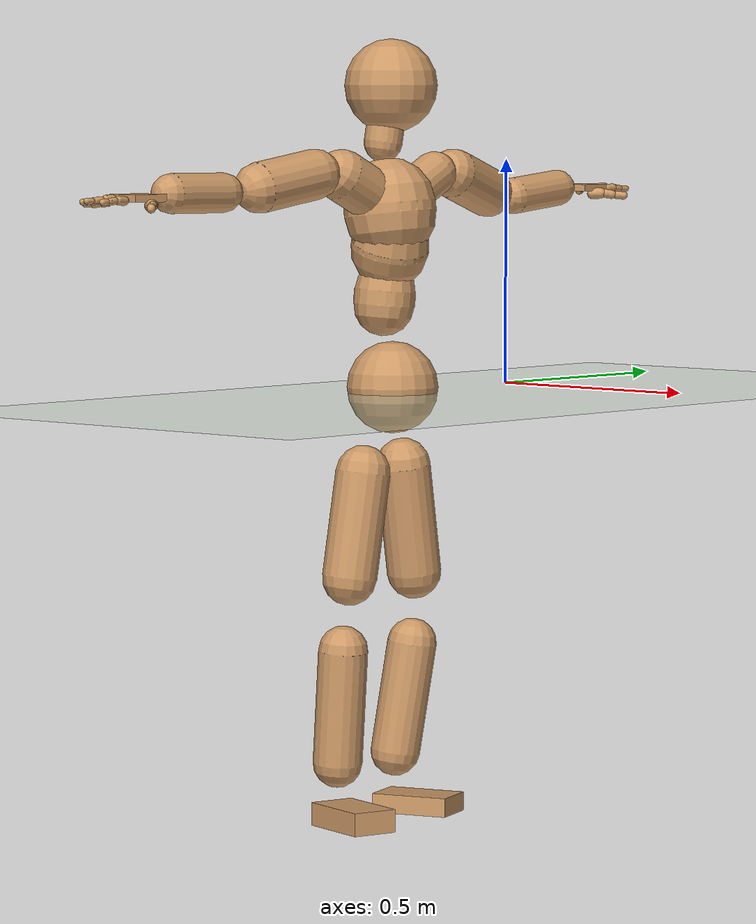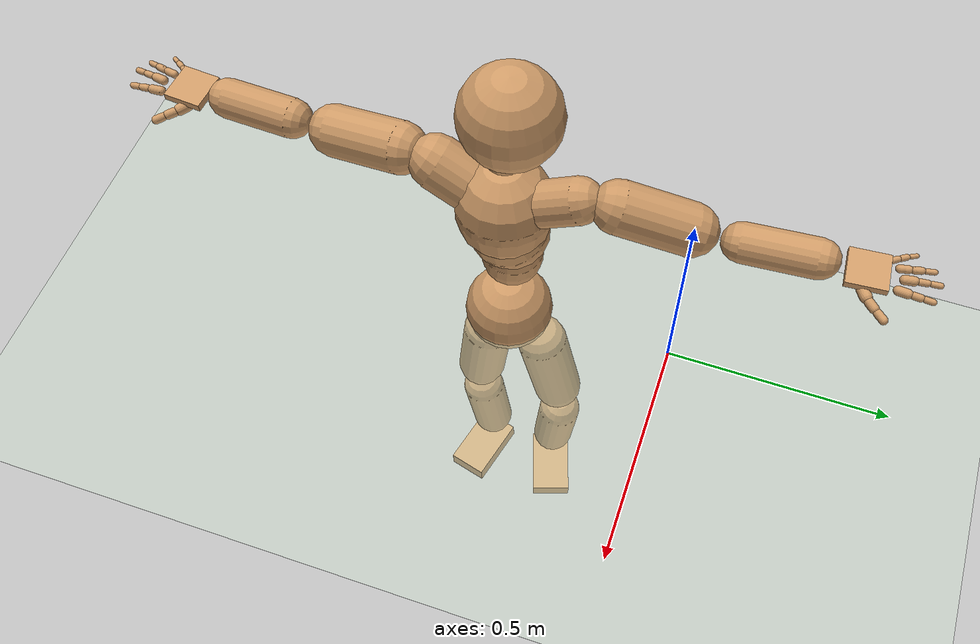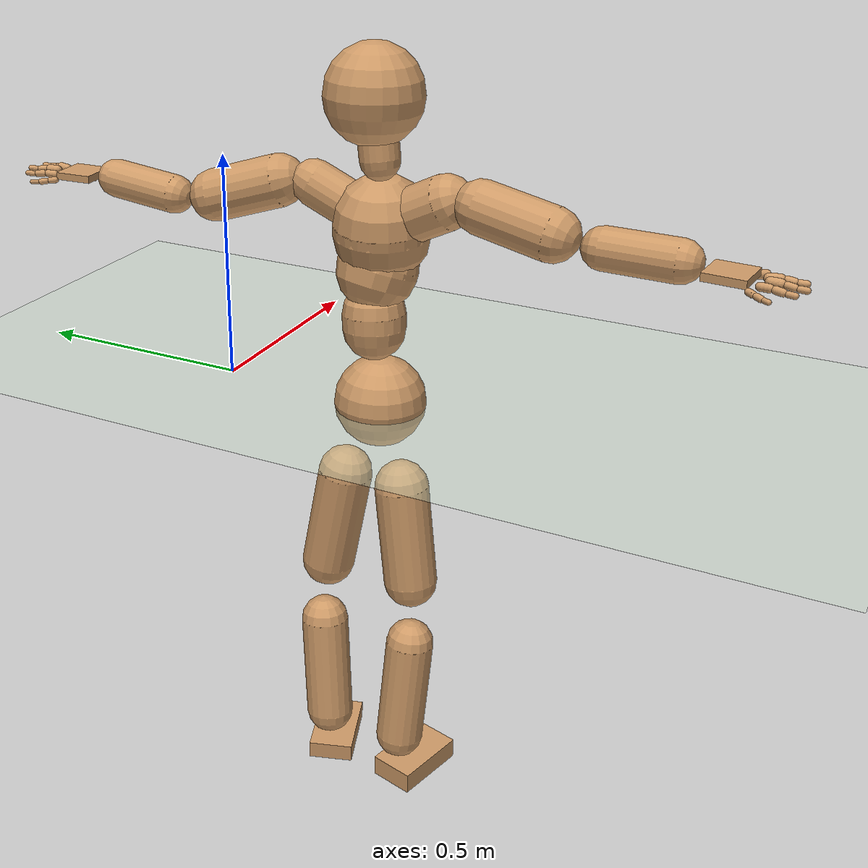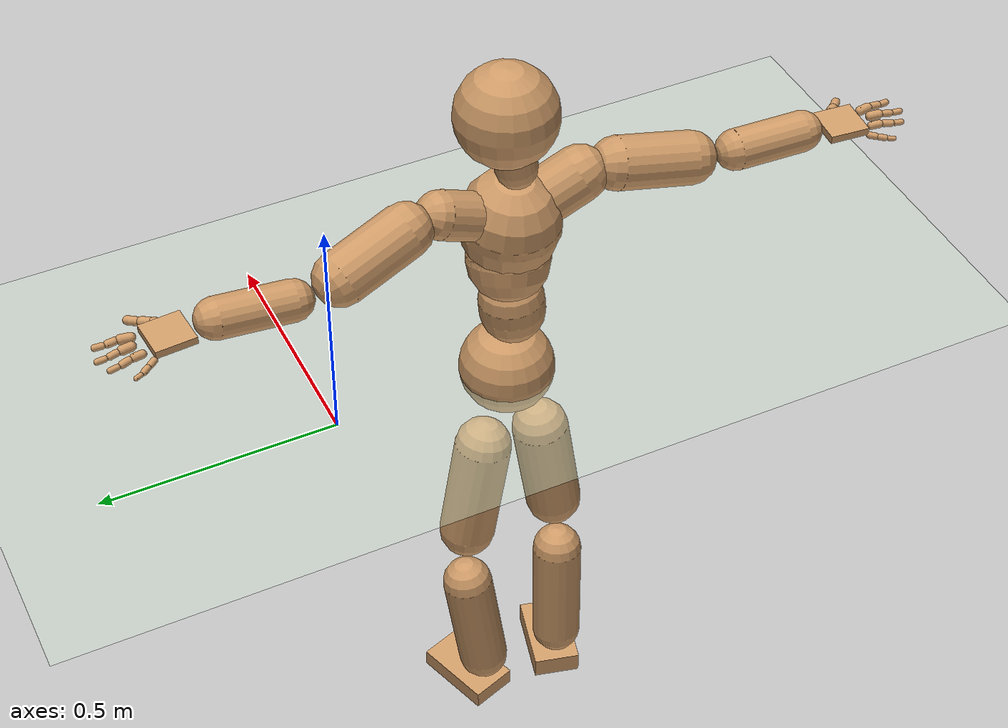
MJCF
<mujoco model="humanoid">
  <compiler coordinate="local" angle="radian"/>
  <default>
    <joint damping="0.0" armature="0.01" stiffness="0.0" limited="true"/>
    <geom conaffinity="1" condim="3" contype="7" margin="0.001" rgba="0.8 0.6 .4 1"/>
  </default>
  <asset>
    <texture type="skybox" builtin="gradient" rgb1=".4 .5 .6" rgb2="0 0 0" width="100" height="100"/>
    <texture builtin="flat" height="1278" mark="cross" markrgb="1 1 1" name="texgeom" random="0.01" rgb1="0.8 0.6 0.4" rgb2="0.8 0.6 0.4" type="cube" width="127"/>
    <texture builtin="checker" height="100" name="texplane" rgb1="0 0 0" rgb2="0.8 0.8 0.8" type="2d" width="100"/>
    <material name="MatPlane" reflectance="0.5" shininess="1" specular="1" texrepeat="60 60" texture="texplane"/>
    <material name="geom" texture="texgeom" texuniform="true"/>
  </asset>
  <worldbody>
    <light cutoff="100" diffuse="1 1 1" dir="-0 0 -1.3" directional="true" exponent="1" pos="0 0 1.3" specular=".1 .1 .1"/>
    <geom conaffinity="1" condim="3" name="floor" pos="0 0 0" rgba="0.8 0.9 0.8 1" size="100 100 .2" type="plane" material="MatPlane"/>
    <body name="Pelvis" pos="0.0008 -0.3782 0.0096">
      <freejoint name="Pelvis"/>
      <geom type="sphere" contype="1" conaffinity="1" density="500" size="0.1004" pos="0.0000 0.0000 0.0000" name="Pelvis"/>
      <body name="L_Hip" pos="-0.0293 0.0551 -0.0975">
        <joint name="L_Hip_x" type="hinge" pos="0 0 0" axis="1 0 0" stiffness="800" damping="80" armature="0.02" range="-180.0000 180.0000"/>
        <joint name="L_Hip_y" type="hinge" pos="0 0 0" axis="0 1 0" stiffness="800" damping="80" armature="0.02" range="-180.0000 180.0000"/>
        <joint name="L_Hip_z" type="hinge" pos="0 0 0" axis="0 0 1" stiffness="800" damping="80" armature="0.02" range="-180.0000 180.0000"/>
        <geom type="capsule" contype="1" conaffinity="1" density="500" fromto="-0.0020 0.0139 -0.0796 -0.0080 0.0557 -0.3185" size="0.0603" name="L_Hip"/>
        <body name="L_Knee" pos="-0.01 0.0697 -0.3982">
          <joint name="L_Knee_x" type="hinge" pos="0 0 0" axis="1 0 0" stiffness="800" damping="80" armature="0.02" range="-180.0000 180.0000"/>
          <joint name="L_Knee_y" type="hinge" pos="0 0 0" axis="0 1 0" stiffness="800" damping="80" armature="0.02" range="-180.0000 180.0000"/>
          <joint name="L_Knee_z" type="hinge" pos="0 0 0" axis="0 0 1" stiffness="800" damping="80" armature="0.02" range="-180.0000 180.0000"/>
          <geom type="capsule" contype="1" conaffinity="1" density="500" fromto="-0.0088 -0.0087 -0.0809 -0.0352 -0.0347 -0.3236" size="0.0547" name="L_Knee"/>
          <body name="L_Ankle" pos="-0.0441 -0.0434 -0.4045">
            <joint name="L_Ankle_x" type="hinge" pos="0 0 0" axis="1 0 0" stiffness="800" damping="80" armature="0.02" range="-180.0000 180.0000"/>
            <joint name="L_Ankle_y" type="hinge" pos="0 0 0" axis="0 1 0" stiffness="800" damping="80" armature="0.02" range="-180.0000 180.0000"/>
            <joint name="L_Ankle_z" type="hinge" pos="0 0 0" axis="0 0 1" stiffness="800" damping="80" armature="0.02" range="-180.0000 180.0000"/>
            <geom type="box" contype="1" conaffinity="1" density="500" pos="0.0650 0.0216 -0.0290" size="0.0882 0.0518 0.0208" quat="0.9871 0.0000 0.0000 0.1600" name="L_Ankle"/>
            <body name="L_Toe" pos="0.1299 0.0433 -0.0581">
              <joint name="L_Toe_x" type="hinge" pos="0 0 0" axis="1 0 0" stiffness="500" damping="50" armature="0.02" range="-180.0000 180.0000"/>
              <joint name="L_Toe_y" type="hinge" pos="0 0 0" axis="0 1 0" stiffness="500" damping="50" armature="0.02" range="-180.0000 180.0000"/>
              <joint name="L_Toe_z" type="hinge" pos="0 0 0" axis="0 0 1" stiffness="500" damping="50" armature="0.02" range="-180.0000 180.0000"/>
              <geom type="box" contype="1" conaffinity="1" density="500" pos="0.0000 0.0000 0.0294" size="0.001 0.0025 0.0011" quat="0.9864 0.0000 0.0000 0.1645" name="L_Toe"/>
            </body>
          </body>
        </body>
      </body>
      <body name="R_Hip" pos="-0.0222 -0.0564 -0.108">
        <joint name="R_Hip_x" type="hinge" pos="0 0 0" axis="1 0 0" stiffness="800" damping="80" armature="0.02" range="-180.0000 180.0000"/>
        <joint name="R_Hip_y" type="hinge" pos="0 0 0" axis="0 1 0" stiffness="800" damping="80" armature="0.02" range="-180.0000 180.0000"/>
        <joint name="R_Hip_z" type="hinge" pos="0 0 0" axis="0 0 1" stiffness="800" damping="80" armature="0.02" range="-180.0000 180.0000"/>
        <geom type="capsule" contype="1" conaffinity="1" density="500" fromto="-0.0035 -0.0106 -0.0763 -0.0141 -0.0426 -0.3051" size="0.0602" name="R_Hip"/>
        <body name="R_Knee" pos="-0.0177 -0.0532 -0.3813">
          <joint name="R_Knee_x" type="hinge" pos="0 0 0" axis="1 0 0" stiffness="800" damping="80" armature="0.02" range="-180.0000 180.0000"/>
          <joint name="R_Knee_y" type="hinge" pos="0 0 0" axis="0 1 0" stiffness="800" damping="80" armature="0.02" range="-180.0000 180.0000"/>
          <joint name="R_Knee_z" type="hinge" pos="0 0 0" axis="0 0 1" stiffness="800" damping="80" armature="0.02" range="-180.0000 180.0000"/>
          <geom type="capsule" contype="1" conaffinity="1" density="500" fromto="-0.0086 0.0031 -0.0836 -0.0346 0.0125 -0.3342" size="0.0545" name="R_Knee"/>
          <body name="R_Ankle" pos="-0.0432 0.0156 -0.4178">
            <joint name="R_Ankle_x" type="hinge" pos="0 0 0" axis="1 0 0" stiffness="800" damping="80" armature="0.02" range="-180.0000 180.0000"/>
            <joint name="R_Ankle_y" type="hinge" pos="0 0 0" axis="0 1 0" stiffness="800" damping="80" armature="0.02" range="-180.0000 180.0000"/>
            <joint name="R_Ankle_z" type="hinge" pos="0 0 0" axis="0 0 1" stiffness="800" damping="80" armature="0.02" range="-180.0000 180.0000"/>
            <geom type="box" contype="1" conaffinity="1" density="500" pos="0.0681 -0.0173 -0.0287" size="0.0882 0.0518 0.0252" quat="0.9923 0.0000 0.0000 -0.1242" name="R_Ankle"/>
            <body name="R_Toe" pos="0.1363 -0.0347 -0.0573">
              <joint name="R_Toe_x" type="hinge" pos="0 0 0" axis="1 0 0" stiffness="500" damping="50" armature="0.02" range="-180.0000 180.0000"/>
              <joint name="R_Toe_y" type="hinge" pos="0 0 0" axis="0 1 0" stiffness="500" damping="50" armature="0.02" range="-180.0000 180.0000"/>
              <joint name="R_Toe_z" type="hinge" pos="0 0 0" axis="0 0 1" stiffness="500" damping="50" armature="0.02" range="-180.0000 180.0000"/>
              <geom type="box" contype="1" conaffinity="1" density="500" pos="0.0000 0.0000 0.0246" size="0.001 0.0025 0.0011" quat="0.9933 0.0000 0.0000 -0.1157" name="R_Toe"/>
            </body>
          </body>
        </body>
      </body>
      <body name="Torso" pos="-0.0311 -0.0018 0.1132">
        <joint name="Torso_x" type="hinge" pos="0 0 0" axis="1 0 0" stiffness="1000" damping="100" armature="0.02" range="-180.0000 180.0000"/>
        <joint name="Torso_y" type="hinge" pos="0 0 0" axis="0 1 0" stiffness="1000" damping="100" armature="0.02" range="-180.0000 180.0000"/>
        <joint name="Torso_z" type="hinge" pos="0 0 0" axis="0 0 1" stiffness="1000" damping="100" armature="0.02" range="-180.0000 180.0000"/>
        <geom type="capsule" contype="1" conaffinity="1" density="500" fromto="0.0054 0.0062 0.0970 0.0036 0.0041 0.0647" size="0.0673" name="Torso"/>
        <body name="Spine" pos="0.009 0.0104 0.1617">
          <joint name="Spine_x" type="hinge" pos="0 0 0" axis="1 0 0" stiffness="1000" damping="100" armature="0.02" range="-180.0000 180.0000"/>
          <joint name="Spine_y" type="hinge" pos="0 0 0" axis="0 1 0" stiffness="1000" damping="100" armature="0.02" range="-180.0000 180.0000"/>
          <joint name="Spine_z" type="hinge" pos="0 0 0" axis="0 0 1" stiffness="1000" damping="100" armature="0.02" range="-180.0000 180.0000"/>
          <geom type="capsule" contype="1" conaffinity="1" density="500" fromto="0.0132 -0.0053 0.0360 0.0088 -0.0035 0.0240" size="0.0852" name="Spine"/>
          <body name="Chest" pos="0.0221 -0.0088 0.06">
            <joint name="Chest_x" type="hinge" pos="0 0 0" axis="1 0 0" stiffness="1000" damping="100" armature="0.02" range="-180.0000 180.0000"/>
            <joint name="Chest_y" type="hinge" pos="0 0 0" axis="0 1 0" stiffness="1000" damping="100" armature="0.02" range="-180.0000 180.0000"/>
            <joint name="Chest_z" type="hinge" pos="0 0 0" axis="0 0 1" stiffness="1000" damping="100" armature="0.02" range="-180.0000 180.0000"/>
            <geom type="capsule" contype="1" conaffinity="1" density="500" fromto="-0.0069 -0.0022 0.0640 -0.0046 -0.0015 0.0427" size="0.1015" name="Chest"/>
            <body name="Neck" pos="-0.0254 -0.0087 0.1659">
              <joint name="Neck_x" type="hinge" pos="0 0 0" axis="1 0 0" stiffness="500" damping="50" armature="0.02" range="-180.0000 180.0000"/>
              <joint name="Neck_y" type="hinge" pos="0 0 0" axis="0 1 0" stiffness="500" damping="50" armature="0.02" range="-180.0000 180.0000"/>
              <joint name="Neck_z" type="hinge" pos="0 0 0" axis="0 0 1" stiffness="500" damping="50" armature="0.02" range="-180.0000 180.0000"/>
              <geom type="capsule" contype="1" conaffinity="1" density="500" fromto="0.0018 0.0044 0.0309 0.0073 0.0178 0.1236" size="0.0419" name="Neck"/>
              <body name="Head" pos="0.0091 0.0222 0.1545">
                <joint name="Head_x" type="hinge" pos="0 0 0" axis="1 0 0" stiffness="500" damping="50" armature="0.02" range="-180.0000 180.0000"/>
                <joint name="Head_y" type="hinge" pos="0 0 0" axis="0 1 0" stiffness="500" damping="50" armature="0.02" range="-180.0000 180.0000"/>
                <joint name="Head_z" type="hinge" pos="0 0 0" axis="0 0 1" stiffness="500" damping="50" armature="0.02" range="-180.0000 180.0000"/>
                <geom type="sphere" contype="1" conaffinity="1" density="500" size="0.1019" pos="0.0000 0.0000 0.0000" name="Head"/>
              </body>
            </body>
            <body name="L_Thorax" pos="-0.0029 0.0416 0.0768">
              <joint name="L_Thorax_x" type="hinge" pos="0 0 0" axis="1 0 0" stiffness="500" damping="50" armature="0.02" range="-180.0000 180.0000"/>
              <joint name="L_Thorax_y" type="hinge" pos="0 0 0" axis="0 1 0" stiffness="500" damping="50" armature="0.02" range="-180.0000 180.0000"/>
              <joint name="L_Thorax_z" type="hinge" pos="0 0 0" axis="0 0 1" stiffness="500" damping="50" armature="0.02" range="-180.0000 180.0000"/>
              <geom type="capsule" contype="1" conaffinity="1" density="500" fromto="-0.0024 0.0271 0.0129 -0.0096 0.1085 0.0515" size="0.0487" name="L_Thorax"/>
              <body name="L_Shoulder" pos="-0.012 0.1356 0.0644">
                <joint name="L_Shoulder_x" type="hinge" pos="0 0 0" axis="1 0 0" stiffness="500" damping="50" armature="0.02" range="-180.0000 180.0000"/>
                <joint name="L_Shoulder_y" type="hinge" pos="0 0 0" axis="0 1 0" stiffness="500" damping="50" armature="0.02" range="-180.0000 180.0000"/>
                <joint name="L_Shoulder_z" type="hinge" pos="0 0 0" axis="0 0 1" stiffness="500" damping="50" armature="0.02" range="-180.0000 180.0000"/>
                <geom type="capsule" contype="1" conaffinity="1" density="500" fromto="-0.0082 0.0479 -0.0148 -0.0330 0.1915 -0.0591" size="0.0552" name="L_Shoulder"/>
                <body name="L_Elbow" pos="-0.0412 0.2393 -0.0739">
                  <joint name="L_Elbow_x" type="hinge" pos="0 0 0" axis="1 0 0" stiffness="500" damping="50" armature="0.02" range="-720.0000 720.0000"/>
                  <joint name="L_Elbow_y" type="hinge" pos="0 0 0" axis="0 1 0" stiffness="500" damping="50" armature="0.02" range="-720.0000 720.0000"/>
                  <joint name="L_Elbow_z" type="hinge" pos="0 0 0" axis="0 0 1" stiffness="500" damping="50" armature="0.02" range="-720.0000 720.0000"/>
                  <geom type="capsule" contype="1" conaffinity="1" density="500" fromto="0.0000 0.0503 0.0052 0.0001 0.2012 0.0207" size="0.0411" name="L_Elbow"/>
                  <body name="L_Wrist" pos="0.0002 0.2515 0.0258">
                    <joint name="L_Wrist_x" type="hinge" pos="0 0 0" axis="1 0 0" stiffness="300" damping="30" armature="0.02" range="-180.0000 180.0000"/>
                    <joint name="L_Wrist_y" type="hinge" pos="0 0 0" axis="0 1 0" stiffness="300" damping="30" armature="0.02" range="-180.0000 180.0000"/>
                    <joint name="L_Wrist_z" type="hinge" pos="0 0 0" axis="0 0 1" stiffness="300" damping="30" armature="0.02" range="-180.0000 180.0000"/>
                    <geom type="box" contype="1" conaffinity="1" density="500" pos="-0.0029 0.0408 -0.0059" size="0.0414 0.0411 0.0078" quat="0.7313 0.0000 0.0000 -0.6820" name="L_Wrist"/>
                    <body name="L_Index1" pos="0.0205 0.0964 -0.0089">
                      <joint name="L_Index1_x" type="hinge" pos="0 0 0" axis="1 0 0" stiffness="100" damping="10" armature="0.02" range="-180.0000 180.0000"/>
                      <joint name="L_Index1_y" type="hinge" pos="0 0 0" axis="0 1 0" stiffness="100" damping="10" armature="0.02" range="-180.0000 180.0000"/>
                      <joint name="L_Index1_z" type="hinge" pos="0 0 0" axis="0 0 1" stiffness="100" damping="10" armature="0.02" range="-180.0000 180.0000"/>
                      <geom type="capsule" contype="1" conaffinity="1" density="500" fromto="0.0007 0.0063 0.0003 0.0027 0.0254 0.0012" size="0.0095" name="L_Index1"/>
                      <body name="L_Index2" pos="0.0034 0.0317 0.0015">
                        <joint name="L_Index2_x" type="hinge" pos="0 0 0" axis="1 0 0" stiffness="100" damping="10" armature="0.02" range="-180.0000 180.0000"/>
                        <joint name="L_Index2_y" type="hinge" pos="0 0 0" axis="0 1 0" stiffness="100" damping="10" armature="0.02" range="-180.0000 180.0000"/>
                        <joint name="L_Index2_z" type="hinge" pos="0 0 0" axis="0 0 1" stiffness="100" damping="10" armature="0.02" range="-180.0000 180.0000"/>
                        <geom type="capsule" contype="1" conaffinity="1" density="500" fromto="-0.0001 0.0045 -0.0005 -0.0003 0.0179 -0.0021" size="0.0077" name="L_Index2"/>
                        <body name="L_Index3" pos="-0.0004 0.0224 -0.0026">
                          <joint name="L_Index3_x" type="hinge" pos="0 0 0" axis="1 0 0" stiffness="100" damping="10" armature="0.02" range="-180.0000 180.0000"/>
                          <joint name="L_Index3_y" type="hinge" pos="0 0 0" axis="0 1 0" stiffness="100" damping="10" armature="0.02" range="-180.0000 180.0000"/>
                          <joint name="L_Index3_z" type="hinge" pos="0 0 0" axis="0 0 1" stiffness="100" damping="10" armature="0.02" range="-180.0000 180.0000"/>
                          <geom type="capsule" contype="1" conaffinity="1" density="500" fromto="0.0003 0.0049 -0.0001 0.0013 0.0195 -0.0005" size="0.0065" name="L_Index3"/>
                        </body>
                      </body>
                    </body>
                    <body name="L_Middle1" pos="-0.0036 0.1038 -0.0062">
                      <joint name="L_Middle1_x" type="hinge" pos="0 0 0" axis="1 0 0" stiffness="100" damping="10" armature="0.02" range="-180.0000 180.0000"/>
                      <joint name="L_Middle1_y" type="hinge" pos="0 0 0" axis="0 1 0" stiffness="100" damping="10" armature="0.02" range="-180.0000 180.0000"/>
                      <joint name="L_Middle1_z" type="hinge" pos="0 0 0" axis="0 0 1" stiffness="100" damping="10" armature="0.02" range="-180.0000 180.0000"/>
                      <geom type="capsule" contype="1" conaffinity="1" density="500" fromto="-0.0009 0.0061 0.0001 -0.0034 0.0243 0.0004" size="0.0095" name="L_Middle1"/>
                      <body name="L_Middle2" pos="-0.0043 0.0303 0.0005">
                        <joint name="L_Middle2_x" type="hinge" pos="0 0 0" axis="1 0 0" stiffness="100" damping="10" armature="0.02" range="-180.0000 180.0000"/>
                        <joint name="L_Middle2_y" type="hinge" pos="0 0 0" axis="0 1 0" stiffness="100" damping="10" armature="0.02" range="-180.0000 180.0000"/>
                        <joint name="L_Middle2_z" type="hinge" pos="0 0 0" axis="0 0 1" stiffness="100" damping="10" armature="0.02" range="-180.0000 180.0000"/>
                        <geom type="capsule" contype="1" conaffinity="1" density="500" fromto="-0.0009 0.0046 -0.0005 -0.0034 0.0185 -0.0019" size="0.007" name="L_Middle2"/>
                        <body name="L_Middle3" pos="-0.0043 0.0232 -0.0023">
                          <joint name="L_Middle3_x" type="hinge" pos="0 0 0" axis="1 0 0" stiffness="100" damping="10" armature="0.02" range="-180.0000 180.0000"/>
                          <joint name="L_Middle3_y" type="hinge" pos="0 0 0" axis="0 1 0" stiffness="100" damping="10" armature="0.02" range="-180.0000 180.0000"/>
                          <joint name="L_Middle3_z" type="hinge" pos="0 0 0" axis="0 0 1" stiffness="100" damping="10" armature="0.02" range="-180.0000 180.0000"/>
                          <geom type="capsule" contype="1" conaffinity="1" density="500" fromto="-0.0005 0.0050 -0.0001 -0.0018 0.0201 -0.0003" size="0.0061" name="L_Middle3"/>
                        </body>
                      </body>
                    </body>
                    <body name="L_Pinky1" pos="-0.0446 0.0794 -0.0148">
                      <joint name="L_Pinky1_x" type="hinge" pos="0 0 0" axis="1 0 0" stiffness="100" damping="10" armature="0.02" range="-180.0000 180.0000"/>
                      <joint name="L_Pinky1_y" type="hinge" pos="0 0 0" axis="0 1 0" stiffness="100" damping="10" armature="0.02" range="-180.0000 180.0000"/>
                      <joint name="L_Pinky1_z" type="hinge" pos="0 0 0" axis="0 0 1" stiffness="100" damping="10" armature="0.02" range="-180.0000 180.0000"/>
                      <geom type="capsule" contype="1" conaffinity="1" density="500" fromto="-0.0023 0.0032 -0.0003 -0.0093 0.0130 -0.0013" size="0.0067" name="L_Pinky1"/>
                      <body name="L_Pinky2" pos="-0.0116 0.0162 -0.0016">
                        <joint name="L_Pinky2_x" type="hinge" pos="0 0 0" axis="1 0 0" stiffness="100" damping="10" armature="0.02" range="-180.0000 180.0000"/>
                        <joint name="L_Pinky2_y" type="hinge" pos="0 0 0" axis="0 1 0" stiffness="100" damping="10" armature="0.02" range="-180.0000 180.0000"/>
                        <joint name="L_Pinky2_z" type="hinge" pos="0 0 0" axis="0 0 1" stiffness="100" damping="10" armature="0.02" range="-180.0000 180.0000"/>
                        <geom type="capsule" contype="1" conaffinity="1" density="500" fromto="-0.0022 0.0032 -0.0004 -0.0086 0.0128 -0.0015" size="0.0064" name="L_Pinky2"/>
                        <body name="L_Pinky3" pos="-0.0108 0.0161 -0.0018">
                          <joint name="L_Pinky3_x" type="hinge" pos="0 0 0" axis="1 0 0" stiffness="100" damping="10" armature="0.02" range="-180.0000 180.0000"/>
                          <joint name="L_Pinky3_y" type="hinge" pos="0 0 0" axis="0 1 0" stiffness="100" damping="10" armature="0.02" range="-180.0000 180.0000"/>
                          <joint name="L_Pinky3_z" type="hinge" pos="0 0 0" axis="0 0 1" stiffness="100" damping="10" armature="0.02" range="-180.0000 180.0000"/>
                          <geom type="capsule" contype="1" conaffinity="1" density="500" fromto="-0.0018 0.0036 0.0000 -0.0070 0.0144 0.0001" size="0.0048" name="L_Pinky3"/>
                        </body>
                      </body>
                    </body>
                    <body name="L_Ring1" pos="-0.0276 0.0922 -0.0091">
                      <joint name="L_Ring1_x" type="hinge" pos="0 0 0" axis="1 0 0" stiffness="100" damping="10" armature="0.02" range="-180.0000 180.0000"/>
                      <joint name="L_Ring1_y" type="hinge" pos="0 0 0" axis="0 1 0" stiffness="100" damping="10" armature="0.02" range="-180.0000 180.0000"/>
                      <joint name="L_Ring1_z" type="hinge" pos="0 0 0" axis="0 0 1" stiffness="100" damping="10" armature="0.02" range="-180.0000 180.0000"/>
                      <geom type="capsule" contype="1" conaffinity="1" density="500" fromto="-0.0010 0.0056 0.0001 -0.0038 0.0225 0.0006" size="0.0081" name="L_Ring1"/>
                      <body name="L_Ring2" pos="-0.0048 0.0281 0.0007">
                        <joint name="L_Ring2_x" type="hinge" pos="0 0 0" axis="1 0 0" stiffness="100" damping="10" armature="0.02" range="-180.0000 180.0000"/>
                        <joint name="L_Ring2_y" type="hinge" pos="0 0 0" axis="0 1 0" stiffness="100" damping="10" armature="0.02" range="-180.0000 180.0000"/>
                        <joint name="L_Ring2_z" type="hinge" pos="0 0 0" axis="0 0 1" stiffness="100" damping="10" armature="0.02" range="-180.0000 180.0000"/>
                        <geom type="capsule" contype="1" conaffinity="1" density="500" fromto="-0.0013 0.0046 -0.0005 -0.0052 0.0184 -0.0018" size="0.0075" name="L_Ring2"/>
                        <body name="L_Ring3" pos="-0.0065 0.0229 -0.0023">
                          <joint name="L_Ring3_x" type="hinge" pos="0 0 0" axis="1 0 0" stiffness="100" damping="10" armature="0.02" range="-180.0000 180.0000"/>
                          <joint name="L_Ring3_y" type="hinge" pos="0 0 0" axis="0 1 0" stiffness="100" damping="10" armature="0.02" range="-180.0000 180.0000"/>
                          <joint name="L_Ring3_z" type="hinge" pos="0 0 0" axis="0 0 1" stiffness="100" damping="10" armature="0.02" range="-180.0000 180.0000"/>
                          <geom type="capsule" contype="1" conaffinity="1" density="500" fromto="-0.0009 0.0050 -0.0001 -0.0036 0.0200 -0.0002" size="0.0058" name="L_Ring3"/>
                        </body>
                      </body>
                    </body>
                    <body name="L_Thumb1" pos="0.0268 0.0365 -0.0198">
                      <joint name="L_Thumb1_x" type="hinge" pos="0 0 0" axis="1 0 0" stiffness="100" damping="10" armature="0.02" range="-180.0000 180.0000"/>
                      <joint name="L_Thumb1_y" type="hinge" pos="0 0 0" axis="0 1 0" stiffness="100" damping="10" armature="0.02" range="-180.0000 180.0000"/>
                      <joint name="L_Thumb1_z" type="hinge" pos="0 0 0" axis="0 0 1" stiffness="100" damping="10" armature="0.02" range="-180.0000 180.0000"/>
                      <geom type="capsule" contype="1" conaffinity="1" density="500" fromto="0.0052 0.0032 0.0004 0.0210 0.0128 0.0015" size="0.0123" name="L_Thumb1"/>
                      <body name="L_Thumb2" pos="0.0262 0.016 0.0019">
                        <joint name="L_Thumb2_x" type="hinge" pos="0 0 0" axis="1 0 0" stiffness="100" damping="10" armature="0.02" range="-180.0000 180.0000"/>
                        <joint name="L_Thumb2_y" type="hinge" pos="0 0 0" axis="0 1 0" stiffness="100" damping="10" armature="0.02" range="-180.0000 180.0000"/>
                        <joint name="L_Thumb2_z" type="hinge" pos="0 0 0" axis="0 0 1" stiffness="100" damping="10" armature="0.02" range="-180.0000 180.0000"/>
                        <geom type="capsule" contype="1" conaffinity="1" density="500" fromto="0.0033 0.0040 -0.0009 0.0130 0.0160 -0.0034" size="0.0098" name="L_Thumb2"/>
                        <body name="L_Thumb3" pos="0.0163 0.02 -0.0043">
                          <joint name="L_Thumb3_x" type="hinge" pos="0 0 0" axis="1 0 0" stiffness="100" damping="10" armature="0.02" range="-180.0000 180.0000"/>
                          <joint name="L_Thumb3_y" type="hinge" pos="0 0 0" axis="0 1 0" stiffness="100" damping="10" armature="0.02" range="-180.0000 180.0000"/>
                          <joint name="L_Thumb3_z" type="hinge" pos="0 0 0" axis="0 0 1" stiffness="100" damping="10" armature="0.02" range="-180.0000 180.0000"/>
                          <geom type="capsule" contype="1" conaffinity="1" density="500" fromto="0.0037 0.0044 -0.0005 0.0146 0.0176 -0.0018" size="0.0088" name="L_Thumb3"/>
                        </body>
                      </body>
                    </body>
                  </body>
                </body>
              </body>
            </body>
            <body name="R_Thorax" pos="-0.006 -0.0441 0.0772">
              <joint name="R_Thorax_x" type="hinge" pos="0 0 0" axis="1 0 0" stiffness="500" damping="50" armature="0.02" range="-180.0000 180.0000"/>
              <joint name="R_Thorax_y" type="hinge" pos="0 0 0" axis="0 1 0" stiffness="500" damping="50" armature="0.02" range="-180.0000 180.0000"/>
              <joint name="R_Thorax_z" type="hinge" pos="0 0 0" axis="0 0 1" stiffness="500" damping="50" armature="0.02" range="-180.0000 180.0000"/>
              <geom type="capsule" contype="1" conaffinity="1" density="500" fromto="-0.0020 -0.0251 0.0126 -0.0081 -0.1006 0.0503" size="0.0571" name="R_Thorax"/>
              <body name="R_Shoulder" pos="-0.0102 -0.1257 0.0629">
                <joint name="R_Shoulder_x" type="hinge" pos="0 0 0" axis="1 0 0" stiffness="500" damping="50" armature="0.02" range="-180.0000 180.0000"/>
                <joint name="R_Shoulder_y" type="hinge" pos="0 0 0" axis="0 1 0" stiffness="500" damping="50" armature="0.02" range="-180.0000 180.0000"/>
                <joint name="R_Shoulder_z" type="hinge" pos="0 0 0" axis="0 0 1" stiffness="500" damping="50" armature="0.02" range="-180.0000 180.0000"/>
                <geom type="capsule" contype="1" conaffinity="1" density="500" fromto="-0.0057 -0.0511 -0.0089 -0.0227 -0.2043 -0.0354" size="0.0545" name="R_Shoulder"/>
                <body name="R_Elbow" pos="-0.0284 -0.2554 -0.0443">
                  <joint name="R_Elbow_x" type="hinge" pos="0 0 0" axis="1 0 0" stiffness="500" damping="50" armature="0.02" range="-720.0000 720.0000"/>
                  <joint name="R_Elbow_y" type="hinge" pos="0 0 0" axis="0 1 0" stiffness="500" damping="50" armature="0.02" range="-720.0000 720.0000"/>
                  <joint name="R_Elbow_z" type="hinge" pos="0 0 0" axis="0 0 1" stiffness="500" damping="50" armature="0.02" range="-720.0000 720.0000"/>
                  <geom type="capsule" contype="1" conaffinity="1" density="500" fromto="-0.0021 -0.0488 0.0002 -0.0085 -0.1954 0.0008" size="0.042" name="R_Elbow"/>
                  <body name="R_Wrist" pos="-0.0106 -0.2442 0.001">
                    <joint name="R_Wrist_x" type="hinge" pos="0 0 0" axis="1 0 0" stiffness="300" damping="30" armature="0.02" range="-180.0000 180.0000"/>
                    <joint name="R_Wrist_y" type="hinge" pos="0 0 0" axis="0 1 0" stiffness="300" damping="30" armature="0.02" range="-180.0000 180.0000"/>
                    <joint name="R_Wrist_z" type="hinge" pos="0 0 0" axis="0 0 1" stiffness="300" damping="30" armature="0.02" range="-180.0000 180.0000"/>
                    <geom type="box" contype="1" conaffinity="1" density="500" pos="-0.0033 -0.0406 -0.0077" size="0.0414 0.0421 0.008" quat="0.7351 0.0000 0.0000 0.6780" name="R_Wrist"/>
                    <body name="R_Index1" pos="0.0197 -0.096 -0.0125">
                      <joint name="R_Index1_x" type="hinge" pos="0 0 0" axis="1 0 0" stiffness="100" damping="10" armature="0.02" range="-180.0000 180.0000"/>
                      <joint name="R_Index1_y" type="hinge" pos="0 0 0" axis="0 1 0" stiffness="100" damping="10" armature="0.02" range="-180.0000 180.0000"/>
                      <joint name="R_Index1_z" type="hinge" pos="0 0 0" axis="0 0 1" stiffness="100" damping="10" armature="0.02" range="-180.0000 180.0000"/>
                      <geom type="capsule" contype="1" conaffinity="1" density="500" fromto="0.0007 -0.0063 0.0003 0.0027 -0.0254 0.0012" size="0.0095" name="R_Index1"/>
                      <body name="R_Index2" pos="0.0034 -0.0317 0.0015">
                        <joint name="R_Index2_x" type="hinge" pos="0 0 0" axis="1 0 0" stiffness="100" damping="10" armature="0.02" range="-180.0000 180.0000"/>
                        <joint name="R_Index2_y" type="hinge" pos="0 0 0" axis="0 1 0" stiffness="100" damping="10" armature="0.02" range="-180.0000 180.0000"/>
                        <joint name="R_Index2_z" type="hinge" pos="0 0 0" axis="0 0 1" stiffness="100" damping="10" armature="0.02" range="-180.0000 180.0000"/>
                        <geom type="capsule" contype="1" conaffinity="1" density="500" fromto="-0.0001 -0.0045 -0.0005 -0.0003 -0.0179 -0.0021" size="0.0077" name="R_Index2"/>
                        <body name="R_Index3" pos="-0.0004 -0.0224 -0.0026">
                          <joint name="R_Index3_x" type="hinge" pos="0 0 0" axis="1 0 0" stiffness="100" damping="10" armature="0.02" range="-180.0000 180.0000"/>
                          <joint name="R_Index3_y" type="hinge" pos="0 0 0" axis="0 1 0" stiffness="100" damping="10" armature="0.02" range="-180.0000 180.0000"/>
                          <joint name="R_Index3_z" type="hinge" pos="0 0 0" axis="0 0 1" stiffness="100" damping="10" armature="0.02" range="-180.0000 180.0000"/>
                          <geom type="capsule" contype="1" conaffinity="1" density="500" fromto="0.0003 -0.0041 -0.0001 0.0013 -0.0163 -0.0005" size="0.0068" name="R_Index3"/>
                        </body>
                      </body>
                    </body>
                    <body name="R_Middle1" pos="-0.0045 -0.1034 -0.0098">
                      <joint name="R_Middle1_x" type="hinge" pos="0 0 0" axis="1 0 0" stiffness="100" damping="10" armature="0.02" range="-180.0000 180.0000"/>
                      <joint name="R_Middle1_y" type="hinge" pos="0 0 0" axis="0 1 0" stiffness="100" damping="10" armature="0.02" range="-180.0000 180.0000"/>
                      <joint name="R_Middle1_z" type="hinge" pos="0 0 0" axis="0 0 1" stiffness="100" damping="10" armature="0.02" range="-180.0000 180.0000"/>
                      <geom type="capsule" contype="1" conaffinity="1" density="500" fromto="-0.0009 -0.0061 0.0001 -0.0034 -0.0243 0.0004" size="0.0095" name="R_Middle1"/>
                      <body name="R_Middle2" pos="-0.0043 -0.0303 0.0005">
                        <joint name="R_Middle2_x" type="hinge" pos="0 0 0" axis="1 0 0" stiffness="100" damping="10" armature="0.02" range="-180.0000 180.0000"/>
                        <joint name="R_Middle2_y" type="hinge" pos="0 0 0" axis="0 1 0" stiffness="100" damping="10" armature="0.02" range="-180.0000 180.0000"/>
                        <joint name="R_Middle2_z" type="hinge" pos="0 0 0" axis="0 0 1" stiffness="100" damping="10" armature="0.02" range="-180.0000 180.0000"/>
                        <geom type="capsule" contype="1" conaffinity="1" density="500" fromto="-0.0009 -0.0046 -0.0005 -0.0034 -0.0185 -0.0019" size="0.007" name="R_Middle2"/>
                        <body name="R_Middle3" pos="-0.0043 -0.0232 -0.0023">
                          <joint name="R_Middle3_x" type="hinge" pos="0 0 0" axis="1 0 0" stiffness="100" damping="10" armature="0.02" range="-180.0000 180.0000"/>
                          <joint name="R_Middle3_y" type="hinge" pos="0 0 0" axis="0 1 0" stiffness="100" damping="10" armature="0.02" range="-180.0000 180.0000"/>
                          <joint name="R_Middle3_z" type="hinge" pos="0 0 0" axis="0 0 1" stiffness="100" damping="10" armature="0.02" range="-180.0000 180.0000"/>
                          <geom type="capsule" contype="1" conaffinity="1" density="500" fromto="-0.0005 -0.0042 -0.0001 -0.0018 -0.0169 -0.0003" size="0.0064" name="R_Middle3"/>
                        </body>
                      </body>
                    </body>
                    <body name="R_Pinky1" pos="-0.0455 -0.079 -0.0184">
                      <joint name="R_Pinky1_x" type="hinge" pos="0 0 0" axis="1 0 0" stiffness="100" damping="10" armature="0.02" range="-180.0000 180.0000"/>
                      <joint name="R_Pinky1_y" type="hinge" pos="0 0 0" axis="0 1 0" stiffness="100" damping="10" armature="0.02" range="-180.0000 180.0000"/>
                      <joint name="R_Pinky1_z" type="hinge" pos="0 0 0" axis="0 0 1" stiffness="100" damping="10" armature="0.02" range="-180.0000 180.0000"/>
                      <geom type="capsule" contype="1" conaffinity="1" density="500" fromto="-0.0023 -0.0032 -0.0003 -0.0093 -0.0130 -0.0013" size="0.0067" name="R_Pinky1"/>
                      <body name="R_Pinky2" pos="-0.0116 -0.0162 -0.0016">
                        <joint name="R_Pinky2_x" type="hinge" pos="0 0 0" axis="1 0 0" stiffness="100" damping="10" armature="0.02" range="-180.0000 180.0000"/>
                        <joint name="R_Pinky2_y" type="hinge" pos="0 0 0" axis="0 1 0" stiffness="100" damping="10" armature="0.02" range="-180.0000 180.0000"/>
                        <joint name="R_Pinky2_z" type="hinge" pos="0 0 0" axis="0 0 1" stiffness="100" damping="10" armature="0.02" range="-180.0000 180.0000"/>
                        <geom type="capsule" contype="1" conaffinity="1" density="500" fromto="-0.0022 -0.0032 -0.0004 -0.0086 -0.0128 -0.0015" size="0.0064" name="R_Pinky2"/>
                        <body name="R_Pinky3" pos="-0.0108 -0.0161 -0.0018">
                          <joint name="R_Pinky3_x" type="hinge" pos="0 0 0" axis="1 0 0" stiffness="100" damping="10" armature="0.02" range="-180.0000 180.0000"/>
                          <joint name="R_Pinky3_y" type="hinge" pos="0 0 0" axis="0 1 0" stiffness="100" damping="10" armature="0.02" range="-180.0000 180.0000"/>
                          <joint name="R_Pinky3_z" type="hinge" pos="0 0 0" axis="0 0 1" stiffness="100" damping="10" armature="0.02" range="-180.0000 180.0000"/>
                          <geom type="capsule" contype="1" conaffinity="1" density="500" fromto="-0.0018 -0.0028 0.0000 -0.0070 -0.0112 0.0001" size="0.0051" name="R_Pinky3"/>
                        </body>
                      </body>
                    </body>
                    <body name="R_Ring1" pos="-0.0285 -0.0918 -0.0127">
                      <joint name="R_Ring1_x" type="hinge" pos="0 0 0" axis="1 0 0" stiffness="100" damping="10" armature="0.02" range="-180.0000 180.0000"/>
                      <joint name="R_Ring1_y" type="hinge" pos="0 0 0" axis="0 1 0" stiffness="100" damping="10" armature="0.02" range="-180.0000 180.0000"/>
                      <joint name="R_Ring1_z" type="hinge" pos="0 0 0" axis="0 0 1" stiffness="100" damping="10" armature="0.02" range="-180.0000 180.0000"/>
                      <geom type="capsule" contype="1" conaffinity="1" density="500" fromto="-0.0010 -0.0056 0.0001 -0.0038 -0.0225 0.0006" size="0.0081" name="R_Ring1"/>
                      <body name="R_Ring2" pos="-0.0048 -0.0281 0.0007">
                        <joint name="R_Ring2_x" type="hinge" pos="0 0 0" axis="1 0 0" stiffness="100" damping="10" armature="0.02" range="-180.0000 180.0000"/>
                        <joint name="R_Ring2_y" type="hinge" pos="0 0 0" axis="0 1 0" stiffness="100" damping="10" armature="0.02" range="-180.0000 180.0000"/>
                        <joint name="R_Ring2_z" type="hinge" pos="0 0 0" axis="0 0 1" stiffness="100" damping="10" armature="0.02" range="-180.0000 180.0000"/>
                        <geom type="capsule" contype="1" conaffinity="1" density="500" fromto="-0.0013 -0.0046 -0.0005 -0.0052 -0.0184 -0.0018" size="0.0075" name="R_Ring2"/>
                        <body name="R_Ring3" pos="-0.0065 -0.0229 -0.0023">
                          <joint name="R_Ring3_x" type="hinge" pos="0 0 0" axis="1 0 0" stiffness="100" damping="10" armature="0.02" range="-180.0000 180.0000"/>
                          <joint name="R_Ring3_y" type="hinge" pos="0 0 0" axis="0 1 0" stiffness="100" damping="10" armature="0.02" range="-180.0000 180.0000"/>
                          <joint name="R_Ring3_z" type="hinge" pos="0 0 0" axis="0 0 1" stiffness="100" damping="10" armature="0.02" range="-180.0000 180.0000"/>
                          <geom type="capsule" contype="1" conaffinity="1" density="500" fromto="-0.0009 -0.0042 -0.0001 -0.0036 -0.0168 -0.0002" size="0.006" name="R_Ring3"/>
                        </body>
                      </body>
                    </body>
                    <body name="R_Thumb1" pos="0.0259 -0.0361 -0.0234">
                      <joint name="R_Thumb1_x" type="hinge" pos="0 0 0" axis="1 0 0" stiffness="100" damping="10" armature="0.02" range="-180.0000 180.0000"/>
                      <joint name="R_Thumb1_y" type="hinge" pos="0 0 0" axis="0 1 0" stiffness="100" damping="10" armature="0.02" range="-180.0000 180.0000"/>
                      <joint name="R_Thumb1_z" type="hinge" pos="0 0 0" axis="0 0 1" stiffness="100" damping="10" armature="0.02" range="-180.0000 180.0000"/>
                      <geom type="capsule" contype="1" conaffinity="1" density="500" fromto="0.0052 -0.0032 0.0004 0.0210 -0.0128 0.0015" size="0.0123" name="R_Thumb1"/>
                      <body name="R_Thumb2" pos="0.0262 -0.016 0.0019">
                        <joint name="R_Thumb2_x" type="hinge" pos="0 0 0" axis="1 0 0" stiffness="100" damping="10" armature="0.02" range="-180.0000 180.0000"/>
                        <joint name="R_Thumb2_y" type="hinge" pos="0 0 0" axis="0 1 0" stiffness="100" damping="10" armature="0.02" range="-180.0000 180.0000"/>
                        <joint name="R_Thumb2_z" type="hinge" pos="0 0 0" axis="0 0 1" stiffness="100" damping="10" armature="0.02" range="-180.0000 180.0000"/>
                        <geom type="capsule" contype="1" conaffinity="1" density="500" fromto="0.0033 -0.0040 -0.0009 0.0130 -0.0160 -0.0034" size="0.0098" name="R_Thumb2"/>
                        <body name="R_Thumb3" pos="0.0163 -0.02 -0.0043">
                          <joint name="R_Thumb3_x" type="hinge" pos="0 0 0" axis="1 0 0" stiffness="100" damping="10" armature="0.02" range="-180.0000 180.0000"/>
                          <joint name="R_Thumb3_y" type="hinge" pos="0 0 0" axis="0 1 0" stiffness="100" damping="10" armature="0.02" range="-180.0000 180.0000"/>
                          <joint name="R_Thumb3_z" type="hinge" pos="0 0 0" axis="0 0 1" stiffness="100" damping="10" armature="0.02" range="-180.0000 180.0000"/>
                          <geom type="capsule" contype="1" conaffinity="1" density="500" fromto="0.0037 -0.0036 -0.0005 0.0146 -0.0144 -0.0018" size="0.009" name="R_Thumb3"/>
                        </body>
                      </body>
                    </body>
                  </body>
                </body>
              </body>
            </body>
          </body>
        </body>
      </body>
    </body>
  </worldbody>
  <actuator>
    <motor name="L_Hip_x" joint="L_Hip_x" gear="500"/>
    <motor name="L_Hip_y" joint="L_Hip_y" gear="500"/>
    <motor name="L_Hip_z" joint="L_Hip_z" gear="500"/>
    <motor name="L_Knee_x" joint="L_Knee_x" gear="500"/>
    <motor name="L_Knee_y" joint="L_Knee_y" gear="500"/>
    <motor name="L_Knee_z" joint="L_Knee_z" gear="500"/>
    <motor name="L_Ankle_x" joint="L_Ankle_x" gear="500"/>
    <motor name="L_Ankle_y" joint="L_Ankle_y" gear="500"/>
    <motor name="L_Ankle_z" joint="L_Ankle_z" gear="500"/>
    <motor name="L_Toe_x" joint="L_Toe_x" gear="500"/>
    <motor name="L_Toe_y" joint="L_Toe_y" gear="500"/>
    <motor name="L_Toe_z" joint="L_Toe_z" gear="500"/>
    <motor name="R_Hip_x" joint="R_Hip_x" gear="500"/>
    <motor name="R_Hip_y" joint="R_Hip_y" gear="500"/>
    <motor name="R_Hip_z" joint="R_Hip_z" gear="500"/>
    <motor name="R_Knee_x" joint="R_Knee_x" gear="500"/>
    <motor name="R_Knee_y" joint="R_Knee_y" gear="500"/>
    <motor name="R_Knee_z" joint="R_Knee_z" gear="500"/>
    <motor name="R_Ankle_x" joint="R_Ankle_x" gear="500"/>
    <motor name="R_Ankle_y" joint="R_Ankle_y" gear="500"/>
    <motor name="R_Ankle_z" joint="R_Ankle_z" gear="500"/>
    <motor name="R_Toe_x" joint="R_Toe_x" gear="500"/>
    <motor name="R_Toe_y" joint="R_Toe_y" gear="500"/>
    <motor name="R_Toe_z" joint="R_Toe_z" gear="500"/>
    <motor name="Torso_x" joint="Torso_x" gear="500"/>
    <motor name="Torso_y" joint="Torso_y" gear="500"/>
    <motor name="Torso_z" joint="Torso_z" gear="500"/>
    <motor name="Spine_x" joint="Spine_x" gear="500"/>
    <motor name="Spine_y" joint="Spine_y" gear="500"/>
    <motor name="Spine_z" joint="Spine_z" gear="500"/>
    <motor name="Chest_x" joint="Chest_x" gear="500"/>
    <motor name="Chest_y" joint="Chest_y" gear="500"/>
    <motor name="Chest_z" joint="Chest_z" gear="500"/>
    <motor name="Neck_x" joint="Neck_x" gear="500"/>
    <motor name="Neck_y" joint="Neck_y" gear="500"/>
    <motor name="Neck_z" joint="Neck_z" gear="500"/>
    <motor name="Head_x" joint="Head_x" gear="500"/>
    <motor name="Head_y" joint="Head_y" gear="500"/>
    <motor name="Head_z" joint="Head_z" gear="500"/>
    <motor name="L_Thorax_x" joint="L_Thorax_x" gear="500"/>
    <motor name="L_Thorax_y" joint="L_Thorax_y" gear="500"/>
    <motor name="L_Thorax_z" joint="L_Thorax_z" gear="500"/>
    <motor name="L_Shoulder_x" joint="L_Shoulder_x" gear="500"/>
    <motor name="L_Shoulder_y" joint="L_Shoulder_y" gear="500"/>
    <motor name="L_Shoulder_z" joint="L_Shoulder_z" gear="500"/>
    <motor name="L_Elbow_x" joint="L_Elbow_x" gear="500"/>
    <motor name="L_Elbow_y" joint="L_Elbow_y" gear="500"/>
    <motor name="L_Elbow_z" joint="L_Elbow_z" gear="500"/>
    <motor name="L_Wrist_x" joint="L_Wrist_x" gear="500"/>
    <motor name="L_Wrist_y" joint="L_Wrist_y" gear="500"/>
    <motor name="L_Wrist_z" joint="L_Wrist_z" gear="500"/>
    <motor name="L_Index1_x" joint="L_Index1_x" gear="500"/>
    <motor name="L_Index1_y" joint="L_Index1_y" gear="500"/>
    <motor name="L_Index1_z" joint="L_Index1_z" gear="500"/>
    <motor name="L_Index2_x" joint="L_Index2_x" gear="500"/>
    <motor name="L_Index2_y" joint="L_Index2_y" gear="500"/>
    <motor name="L_Index2_z" joint="L_Index2_z" gear="500"/>
    <motor name="L_Index3_x" joint="L_Index3_x" gear="500"/>
    <motor name="L_Index3_y" joint="L_Index3_y" gear="500"/>
    <motor name="L_Index3_z" joint="L_Index3_z" gear="500"/>
    <motor name="L_Middle1_x" joint="L_Middle1_x" gear="500"/>
    <motor name="L_Middle1_y" joint="L_Middle1_y" gear="500"/>
    <motor name="L_Middle1_z" joint="L_Middle1_z" gear="500"/>
    <motor name="L_Middle2_x" joint="L_Middle2_x" gear="500"/>
    <motor name="L_Middle2_y" joint="L_Middle2_y" gear="500"/>
    <motor name="L_Middle2_z" joint="L_Middle2_z" gear="500"/>
    <motor name="L_Middle3_x" joint="L_Middle3_x" gear="500"/>
    <motor name="L_Middle3_y" joint="L_Middle3_y" gear="500"/>
    <motor name="L_Middle3_z" joint="L_Middle3_z" gear="500"/>
    <motor name="L_Pinky1_x" joint="L_Pinky1_x" gear="500"/>
    <motor name="L_Pinky1_y" joint="L_Pinky1_y" gear="500"/>
    <motor name="L_Pinky1_z" joint="L_Pinky1_z" gear="500"/>
    <motor name="L_Pinky2_x" joint="L_Pinky2_x" gear="500"/>
    <motor name="L_Pinky2_y" joint="L_Pinky2_y" gear="500"/>
    <motor name="L_Pinky2_z" joint="L_Pinky2_z" gear="500"/>
    <motor name="L_Pinky3_x" joint="L_Pinky3_x" gear="500"/>
    <motor name="L_Pinky3_y" joint="L_Pinky3_y" gear="500"/>
    <motor name="L_Pinky3_z" joint="L_Pinky3_z" gear="500"/>
    <motor name="L_Ring1_x" joint="L_Ring1_x" gear="500"/>
    <motor name="L_Ring1_y" joint="L_Ring1_y" gear="500"/>
    <motor name="L_Ring1_z" joint="L_Ring1_z" gear="500"/>
    <motor name="L_Ring2_x" joint="L_Ring2_x" gear="500"/>
    <motor name="L_Ring2_y" joint="L_Ring2_y" gear="500"/>
    <motor name="L_Ring2_z" joint="L_Ring2_z" gear="500"/>
    <motor name="L_Ring3_x" joint="L_Ring3_x" gear="500"/>
    <motor name="L_Ring3_y" joint="L_Ring3_y" gear="500"/>
    <motor name="L_Ring3_z" joint="L_Ring3_z" gear="500"/>
    <motor name="L_Thumb1_x" joint="L_Thumb1_x" gear="500"/>
    <motor name="L_Thumb1_y" joint="L_Thumb1_y" gear="500"/>
    <motor name="L_Thumb1_z" joint="L_Thumb1_z" gear="500"/>
    <motor name="L_Thumb2_x" joint="L_Thumb2_x" gear="500"/>
    <motor name="L_Thumb2_y" joint="L_Thumb2_y" gear="500"/>
    <motor name="L_Thumb2_z" joint="L_Thumb2_z" gear="500"/>
    <motor name="L_Thumb3_x" joint="L_Thumb3_x" gear="500"/>
    <motor name="L_Thumb3_y" joint="L_Thumb3_y" gear="500"/>
    <motor name="L_Thumb3_z" joint="L_Thumb3_z" gear="500"/>
    <motor name="R_Thorax_x" joint="R_Thorax_x" gear="500"/>
    <motor name="R_Thorax_y" joint="R_Thorax_y" gear="500"/>
    <motor name="R_Thorax_z" joint="R_Thorax_z" gear="500"/>
    <motor name="R_Shoulder_x" joint="R_Shoulder_x" gear="500"/>
    <motor name="R_Shoulder_y" joint="R_Shoulder_y" gear="500"/>
    <motor name="R_Shoulder_z" joint="R_Shoulder_z" gear="500"/>
    <motor name="R_Elbow_x" joint="R_Elbow_x" gear="500"/>
    <motor name="R_Elbow_y" joint="R_Elbow_y" gear="500"/>
    <motor name="R_Elbow_z" joint="R_Elbow_z" gear="500"/>
    <motor name="R_Wrist_x" joint="R_Wrist_x" gear="500"/>
    <motor name="R_Wrist_y" joint="R_Wrist_y" gear="500"/>
    <motor name="R_Wrist_z" joint="R_Wrist_z" gear="500"/>
    <motor name="R_Index1_x" joint="R_Index1_x" gear="500"/>
    <motor name="R_Index1_y" joint="R_Index1_y" gear="500"/>
    <motor name="R_Index1_z" joint="R_Index1_z" gear="500"/>
    <motor name="R_Index2_x" joint="R_Index2_x" gear="500"/>
    <motor name="R_Index2_y" joint="R_Index2_y" gear="500"/>
    <motor name="R_Index2_z" joint="R_Index2_z" gear="500"/>
    <motor name="R_Index3_x" joint="R_Index3_x" gear="500"/>
    <motor name="R_Index3_y" joint="R_Index3_y" gear="500"/>
    <motor name="R_Index3_z" joint="R_Index3_z" gear="500"/>
    <motor name="R_Middle1_x" joint="R_Middle1_x" gear="500"/>
    <motor name="R_Middle1_y" joint="R_Middle1_y" gear="500"/>
    <motor name="R_Middle1_z" joint="R_Middle1_z" gear="500"/>
    <motor name="R_Middle2_x" joint="R_Middle2_x" gear="500"/>
    <motor name="R_Middle2_y" joint="R_Middle2_y" gear="500"/>
    <motor name="R_Middle2_z" joint="R_Middle2_z" gear="500"/>
    <motor name="R_Middle3_x" joint="R_Middle3_x" gear="500"/>
    <motor name="R_Middle3_y" joint="R_Middle3_y" gear="500"/>
    <motor name="R_Middle3_z" joint="R_Middle3_z" gear="500"/>
    <motor name="R_Pinky1_x" joint="R_Pinky1_x" gear="500"/>
    <motor name="R_Pinky1_y" joint="R_Pinky1_y" gear="500"/>
    <motor name="R_Pinky1_z" joint="R_Pinky1_z" gear="500"/>
    <motor name="R_Pinky2_x" joint="R_Pinky2_x" gear="500"/>
    <motor name="R_Pinky2_y" joint="R_Pinky2_y" gear="500"/>
    <motor name="R_Pinky2_z" joint="R_Pinky2_z" gear="500"/>
    <motor name="R_Pinky3_x" joint="R_Pinky3_x" gear="500"/>
    <motor name="R_Pinky3_y" joint="R_Pinky3_y" gear="500"/>
    <motor name="R_Pinky3_z" joint="R_Pinky3_z" gear="500"/>
    <motor name="R_Ring1_x" joint="R_Ring1_x" gear="500"/>
    <motor name="R_Ring1_y" joint="R_Ring1_y" gear="500"/>
    <motor name="R_Ring1_z" joint="R_Ring1_z" gear="500"/>
    <motor name="R_Ring2_x" joint="R_Ring2_x" gear="500"/>
    <motor name="R_Ring2_y" joint="R_Ring2_y" gear="500"/>
    <motor name="R_Ring2_z" joint="R_Ring2_z" gear="500"/>
    <motor name="R_Ring3_x" joint="R_Ring3_x" gear="500"/>
    <motor name="R_Ring3_y" joint="R_Ring3_y" gear="500"/>
    <motor name="R_Ring3_z" joint="R_Ring3_z" gear="500"/>
    <motor name="R_Thumb1_x" joint="R_Thumb1_x" gear="500"/>
    <motor name="R_Thumb1_y" joint="R_Thumb1_y" gear="500"/>
    <motor name="R_Thumb1_z" joint="R_Thumb1_z" gear="500"/>
    <motor name="R_Thumb2_x" joint="R_Thumb2_x" gear="500"/>
    <motor name="R_Thumb2_y" joint="R_Thumb2_y" gear="500"/>
    <motor name="R_Thumb2_z" joint="R_Thumb2_z" gear="500"/>
    <motor name="R_Thumb3_x" joint="R_Thumb3_x" gear="500"/>
    <motor name="R_Thumb3_y" joint="R_Thumb3_y" gear="500"/>
    <motor name="R_Thumb3_z" joint="R_Thumb3_z" gear="500"/>
  </actuator>
  <contact>
    <exclude body1="Torso" body2="Chest"/>
    <exclude body1="Head" body2="Chest"/>
    <exclude body1="R_Knee" body2="R_Toe"/>
    <exclude body1="R_Knee" body2="L_Ankle"/>
    <exclude body1="R_Knee" body2="L_Toe"/>
    <exclude body1="L_Knee" body2="L_Toe"/>
    <exclude body1="L_Knee" body2="R_Ankle"/>
    <exclude body1="L_Knee" body2="R_Toe"/>
    <exclude body1="L_Shoulder" body2="Chest"/>
    <exclude body1="R_Shoulder" body2="Chest"/>
  </contact>
  <sensor/>
  <size njmax="700" nconmax="700"/>
</mujoco>
